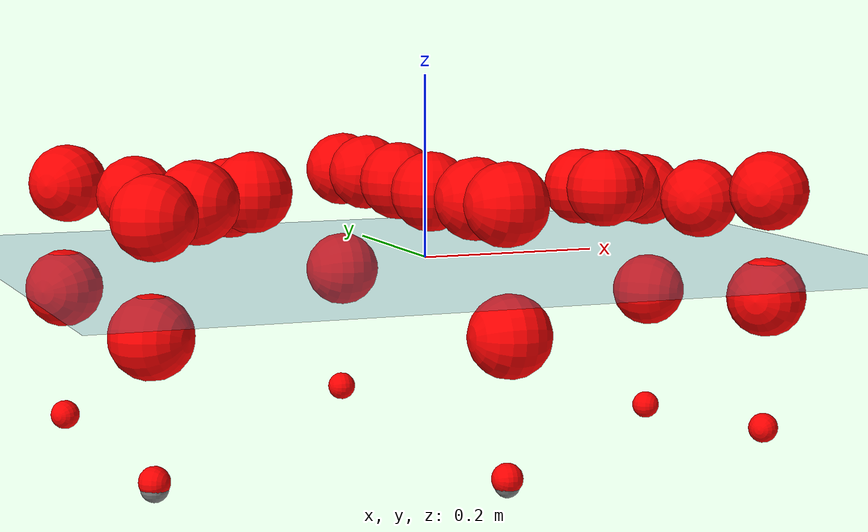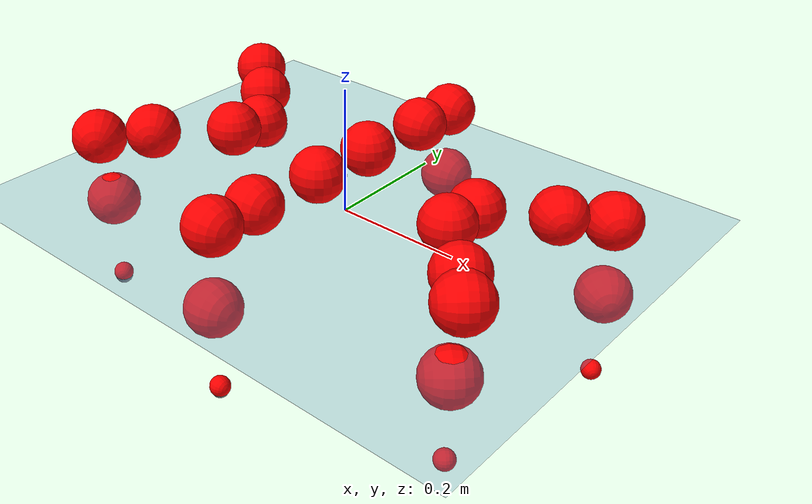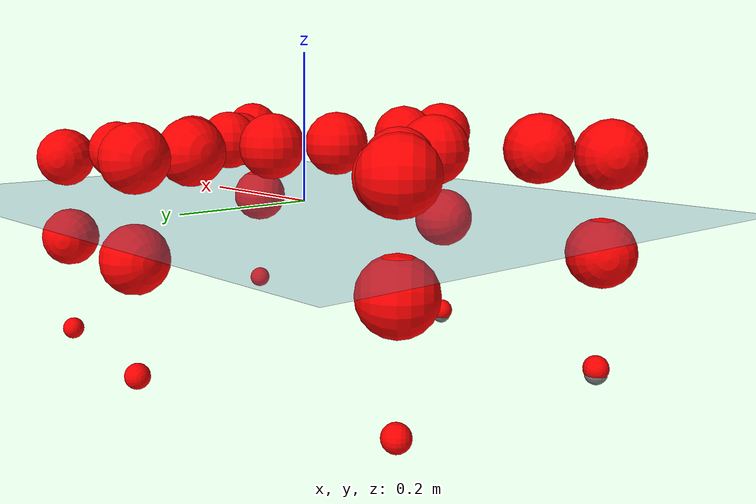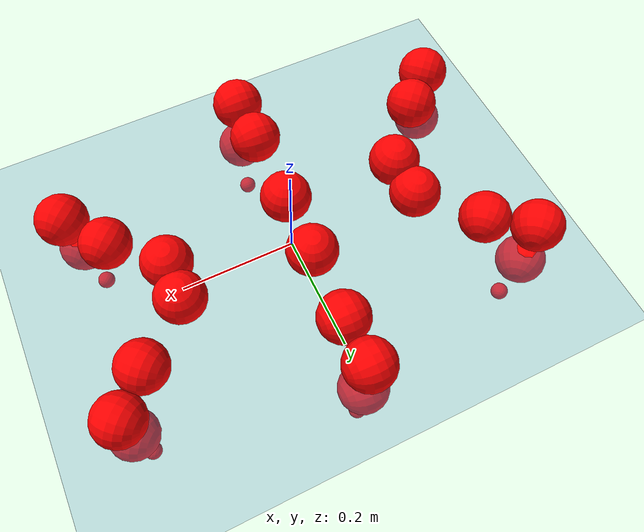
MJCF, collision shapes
<mujoco model="Golem">
  <compiler angle="radian" assetdir="assets" balanceinertia="true" inertiafromgeom="false"/>

  <option timestep="0.005" density="1.2" viscosity="2e-05"/>

  <size nkey="1"/>

  <visual>
    <quality shadowsize="8192"/>
    <map shadowclip="0.5"/>
  </visual>

  <default>
    <default class="/">
      <joint armature="0.01" damping="0.01" frictionloss="0.01"/>
      <geom contype="0" conaffinity="0" group="1" solref="-1000 -80"/>
      <site size="0.01 0.005 0.005" group="5"/>
      <general forcelimited="true" biastype="affine" gainprm="25" biasprm="0 -25 -0.5"/>
      <default class="visual">
        <geom type="mesh" group="2"/>
      </default>
      <default class="collision">
        <geom group="3"/>
      </default>
      <default class="foot">
        <geom size="0.01 0 0" condim="6" group="4" priority="1" solimp="0.015 1 0.01"/>
      </default>
      <default class="reward_collision_sphere">
        <geom group="5" rgba="1 0 0 1"/>
      </default>
    </default>
  </default>

  <asset>
    <texture type="skybox" colorspace="auto" name="//unnamed_texture_0" builtin="gradient" rgb1="0.95 0.95 0.95" rgb2="0.95 0.95 0.95" width="100" height="600"/>
    <texture type="2d" colorspace="auto" name="texplane" builtin="checker" rgb1="0.345 0.575 0.748" rgb2="0.345 0.575 0.748" markrgb="1 1 1" width="512" height="512"/>
    <material name="MatPlane" class="/" texture="texplane" texuniform="true" texrepeat="2 2" specular="0.9"/>
    <mesh name="body" class="/" file="body.stl" scale="0.001 0.001 0.001"/>
    <mesh name="coxa" class="/" file="coxa.stl" scale="0.001 0.001 0.001"/>
    <mesh name="femur" class="/" file="femur.stl" scale="0.001 0.001 0.001"/>
    <mesh name="tibia" class="/" file="tibia.stl" scale="0.001 0.001 0.001"/>
    <mesh name="tarsus" class="/" file="tarsus.stl" scale="0.001 0.001 0.001"/>
  </asset>

  <worldbody>
    <geom name="floor" class="/" size="100 100 0.125" type="plane" group="0" material="MatPlane"/>
    <light name="toplight_shadow" class="/" pos="0 0 5" dir="0.0990148 0.0990148 -0.990148" type="directional" ambient="0.04 0.04 0.04" diffuse="0.55 0.55 0.55" specular="0.12 0.12 0.12"/>
    <light name="toplight_fill" class="/" pos="0 0 5" dir="0.0990148 0.0990148 -0.990148" type="directional" castshadow="false" ambient="0.04 0.04 0.04" diffuse="0.3 0.3 0.3" specular="0.08 0.08 0.08"/>
    <body name="trunk" pos="-8.20912e-05 0.000445019 0.00664528" quat="0.999991 0.00154751 0.00299957 -0.00268751">
      <inertial pos="-0.00374056 0.00383013 -0.00761793" quat="0.999907 0.0131329 -0.000760904 -0.00349178" mass="5.4797" diaginertia="0.0460982 0.0025301 0.0196981"/>
      <joint name="//unnamed_joint_0" type="free"/>
      <geom name="//unnamed_geom_1" class="/" pos="0 0 0.0733586" quat="1 0 0 0" type="mesh" rgba="0.9 0.9 0.9 1" mesh="body"/>
      <site name="imu" class="/" pos="0.183774 -0.0450364 0.0549917" size="0.0107692"/>
      <camera name="track" class="/" pos="0 -1.48479 0" quat="0.707107 0.707107 0 0" mode="trackcom"/>
      <camera name="ego_camera" class="/" pos="0.174479 0 0.114623" quat="-0.5 -0.5 0.5 0.5"/>
      <body name="coxa_RR" pos="-0.235964 -0.0616553 0.0742053" quat="0.386339 0.00226245 -0.0041323 -0.922345">
        <inertial pos="-0.00784097 -0.00247666 0.00558506" quat="0.99979 -0.00791988 -0.0129645 0.0137331" mass="0.225427" diaginertia="0.0458457 0.00201784 0.017027"/>
        <joint name="coxa_joint_RR" class="/" pos="0 0 0" axis="0.00527471 0.018903 -0.999807" range="-3.21879 3.1875" armature="0.0110439" damping="0.0153521" frictionloss="0.00897199"/>
        <geom name="//unnamed_geom_2" class="/" type="mesh" rgba="0.2 0.2 0.2 1" mesh="coxa"/>
        <geom name="//unnamed_geom_3" class="reward_collision_sphere" size="0.043077" pos="-0.0402645 0 0"/>
        <body name="femur_RR" pos="0.0860255 0.00446983 0.00175505" quat="0.498846 -0.500073 0.496825 0.504228">
          <inertial pos="-0.000502219 -0.0116696 -0.00524603" quat="0.999481 0.0234633 0.0183925 -0.0121644" mass="0.283559" diaginertia="0.0451934 0.00267062 0.0221333"/>
          <joint name="femur_joint_RR" class="/" pos="0 0 0" axis="-0.00154323 -0.00104986 -0.999998" stiffness="0.0020302" range="-3.19359 3.19405" armature="0.00620831" damping="0" frictionloss="0.0105543"/>
          <geom name="//unnamed_geom_4" class="/" type="mesh" rgba="0.9 0.9 0.9 1" mesh="femur"/>
          <geom name="//unnamed_geom_5" class="reward_collision_sphere" size="0.043077"/>
          <body name="tibia_RR" pos="0.00630887 -0.0844232 -0.000892998" quat="-0.000473092 1 -0.000174707 3.20345e-05">
            <inertial pos="-0.00202721 -0.0107013 -0.000799134" quat="0.999998 0.00164213 0.0008227 -0.000596207" mass="0.268294" diaginertia="0.0468913 0.0024182 0.0214334"/>
            <joint name="tibia_joint_RR" class="/" pos="0 0 0" axis="-0.00968864 0.0504646 0.998679" stiffness="0.0364374" range="-3.35456 3.1153" armature="0.014074" damping="0.0411909" frictionloss="0.00400375"/>
            <geom name="//unnamed_geom_6" class="/" type="mesh" rgba="0.2 0.2 0.2 1" mesh="tibia"/>
            <geom name="//unnamed_geom_7" class="reward_collision_sphere" size="0.043077"/>
            <body name="tarsus_RR" pos="0.118491 -0.00797508 0.0106868" quat="0.999996 0.00237876 -0.00117734 1.26174e-05">
              <inertial pos="0.0762676 0.000964147 -0.00733982" quat="0.516566 0.490666 0.486234 0.505948" mass="0.278734" diaginertia="0.0485848 0.00259936 0.018747"/>
              <joint name="tarsus_joint_RR" class="/" pos="0 0 0" axis="0.0316834 -0.00958609 0.999452" range="-3.02884 3.12541" armature="0.0124828" damping="0" frictionloss="0.010828"/>
              <geom name="//unnamed_geom_8" class="/" type="mesh" rgba="0.9 0.9 0.9 1" mesh="tarsus"/>
              <geom name="foot_1" class="foot" size="0.0144004" pos="0.150321 0 0" quat="0 -0.707107 0 0.707107"/>
              <geom name="//unnamed_geom_10" class="reward_collision_sphere" size="0.043077"/>
              <geom name="//unnamed_geom_11" class="reward_collision_sphere" size="0.0161539" pos="0.144281 0 0"/>
              <site name="foot_1" class="foot" pos="0.150321 0 0" quat="0 -0.707107 0 0.707107" size="0.0107692"/>
            </body>
          </body>
        </body>
      </body>
      <body name="coxa_RM" pos="-0.0121489 -0.0880468 0.0705938" quat="0.707273 -0.000397683 0.000775197 -0.70694">
        <inertial pos="0.000941446 0.000917464 0.00915355" quat="0.998237 0.0420299 0.0414358 -0.00625845" mass="0.225234" diaginertia="0.037538 0.00165487 0.0151116"/>
        <joint name="coxa_joint_RM" class="/" pos="0 0 0" axis="0.0190288 -0.0528986 -0.998419" stiffness="0.0227368" range="-3.13163 3.24356" armature="0.0118664" damping="0.00849389" frictionloss="0.00711752"/>
        <geom name="//unnamed_geom_12" class="/" type="mesh" rgba="0.2 0.2 0.2 1" mesh="coxa"/>
        <geom name="//unnamed_geom_13" class="reward_collision_sphere" size="0.043077" pos="-0.0402645 0 0"/>
        <body name="femur_RM" pos="0.0887435 -0.000902072 0.00543475" quat="0.500402 -0.499631 0.500221 0.499745">
          <inertial pos="0.00101408 -0.00765926 0.00174744" quat="0.999998 0.00131983 -0.000949821 -0.00121267" mass="0.236635" diaginertia="0.0493605 0.00224621 0.0213013"/>
          <joint name="femur_joint_RM" class="/" pos="0 0 0" axis="0.00536245 -3.53439e-05 -0.999986" stiffness="0.04008" range="-3.31325 3.04062" armature="0.00685668" damping="0.0149005" frictionloss="0.00544444"/>
          <geom name="//unnamed_geom_14" class="/" type="mesh" rgba="0.9 0.9 0.9 1" mesh="femur"/>
          <geom name="//unnamed_geom_15" class="reward_collision_sphere" size="0.043077"/>
          <body name="tibia_RM" pos="-0.00237422 -0.0785907 0.000178621" quat="-0.000352325 1 3.19705e-05 1.29715e-05">
            <inertial pos="0.00112836 -0.000106465 -0.00813286" quat="0.999989 -0.00401335 -0.00121279 0.00186034" mass="0.21611" diaginertia="0.0426324 0.00220811 0.0209623"/>
            <joint name="tibia_joint_RM" class="/" pos="0 0 0" axis="0.0438807 0.0292095 0.99861" range="-3.21701 2.99664" armature="0.0166423" damping="0.0138979" frictionloss="0.00506318"/>
            <geom name="//unnamed_geom_16" class="/" type="mesh" rgba="0.2 0.2 0.2 1" mesh="tibia"/>
            <geom name="//unnamed_geom_17" class="reward_collision_sphere" size="0.043077"/>
            <body name="tarsus_RM" pos="0.130608 0.00951883 -0.00132078" quat="0.999993 -0.0011988 -0.000704644 -0.00344783">
              <inertial pos="0.0827573 0.000408619 0.00152912" quat="0.494264 0.498173 0.503686 0.503813" mass="0.195156" diaginertia="0.0372977 0.00195708 0.0169726"/>
              <joint name="tarsus_joint_RM" class="/" pos="0 0 0" axis="-0.0131223 0.0127372 0.999833" stiffness="0.0013764" range="-3.20534 3.16035" armature="0.0131698" damping="0" frictionloss="0.0100062"/>
              <geom name="//unnamed_geom_18" class="/" type="mesh" rgba="0.9 0.9 0.9 1" mesh="tarsus"/>
              <geom name="foot_2" class="foot" size="0.0132608" pos="0.150321 0 0" quat="0 -0.707107 0 0.707107"/>
              <geom name="//unnamed_geom_20" class="reward_collision_sphere" size="0.043077"/>
              <geom name="//unnamed_geom_21" class="reward_collision_sphere" size="0.0161539" pos="0.144281 0 0"/>
              <site name="foot_2" class="foot" pos="0.150321 0 0" quat="0 -0.707107 0 0.707107" size="0.0107692"/>
            </body>
          </body>
        </body>
      </body>
      <body name="coxa_RF" pos="0.235223 -0.0504639 0.0649948" quat="0.924012 -0.000124169 0.00062577 -0.382363">
        <inertial pos="0.010941 0.000963985 0.0080663" quat="0.999495 -0.000332665 -0.0299179 0.0107249" mass="0.240052" diaginertia="0.0359087 0.00189572 0.0166473"/>
        <joint name="coxa_joint_RF" class="/" pos="0 0 0" axis="0.00520566 -0.00177446 -0.999985" stiffness="0.0414741" range="-3.11949 3.2681" armature="0.0110302" damping="0" frictionloss="0.00535449"/>
        <geom name="//unnamed_geom_22" class="/" type="mesh" rgba="0.2 0.2 0.2 1" mesh="coxa"/>
        <geom name="//unnamed_geom_23" class="reward_collision_sphere" size="0.043077" pos="-0.0402645 0 0"/>
        <body name="femur_RF" pos="0.0693185 0.00118027 -0.00592656" quat="0.503602 -0.498345 0.499773 0.498261">
          <inertial pos="-0.000184245 0.00139602 0.00156991" quat="0.999633 -0.0137449 -0.0152031 0.0177198" mass="0.243348" diaginertia="0.047967 0.0024275 0.0213036"/>
          <joint name="femur_joint_RF" class="/" pos="0 0 0" axis="0.0145367 0.00272039 -0.999891" range="-3.22846 3.16072" armature="0.0105727" damping="0.0165552" frictionloss="0.0108928"/>
          <geom name="//unnamed_geom_24" class="/" type="mesh" rgba="0.9 0.9 0.9 1" mesh="femur"/>
          <geom name="//unnamed_geom_25" class="reward_collision_sphere" size="0.043077"/>
          <body name="tibia_RF" pos="-0.0127002 -0.0806292 -0.00894889" quat="0.000740051 0.999999 0.000293818 0.00152526">
            <inertial pos="-0.00240332 0.0103596 0.00852308" quat="0.998776 -0.0478773 0.012267 0.00216582" mass="0.273575" diaginertia="0.052308 0.00264088 0.0195675"/>
            <joint name="tibia_joint_RF" class="/" pos="0 0 0" axis="0.00266708 0.0490935 0.998791" stiffness="0.061219" range="-3.04215 3.15763" armature="0.0115517" damping="0.0375244" frictionloss="0.0140106"/>
            <geom name="//unnamed_geom_26" class="/" type="mesh" rgba="0.2 0.2 0.2 1" mesh="tibia"/>
            <geom name="//unnamed_geom_27" class="reward_collision_sphere" size="0.043077"/>
            <body name="tarsus_RF" pos="0.11402 0.00258845 0.0113619" quat="1 3.94971e-05 -4.03293e-08 -2.781e-05">
              <inertial pos="0.0791284 -0.000518984 -0.000634179" quat="0.498703 0.499906 0.489431 0.51171" mass="0.267861" diaginertia="0.048618 0.00265171 0.0208537"/>
              <joint name="tarsus_joint_RF" class="/" pos="0 0 0" axis="0.0537447 -0.0265234 0.998202" range="-3.13644 3.1622" armature="0.012512" damping="0.0118989" frictionloss="0.00771772"/>
              <geom name="//unnamed_geom_28" class="/" type="mesh" rgba="0.9 0.9 0.9 1" mesh="tarsus"/>
              <geom name="foot_3" class="foot" size="0.00888363" pos="0.150321 0 0" quat="0 -0.707107 0 0.707107"/>
              <geom name="//unnamed_geom_30" class="reward_collision_sphere" size="0.043077"/>
              <geom name="//unnamed_geom_31" class="reward_collision_sphere" size="0.0161539" pos="0.144281 0 0"/>
              <site name="foot_3" class="foot" pos="0.150321 0 0" quat="0 -0.707107 0 0.707107" size="0.0107692"/>
            </body>
          </body>
        </body>
      </body>
      <body name="coxa_LR" pos="-0.241543 0.0599281 0.0623911" quat="0.386098 0.00203864 -0.00208798 0.922453">
        <inertial pos="0.00488269 -0.00867671 0.00936396" quat="0.999988 0.00319031 0.00181855 -0.00335627" mass="0.243835" diaginertia="0.0445167 0.0024271 0.0196086"/>
        <joint name="coxa_joint_LR" class="/" pos="0 0 0" axis="-0.0383209 -0.0113711 -0.999201" range="-3.05131 2.93533" armature="0.00993854" damping="0.0116866" frictionloss="0.0067263"/>
        <geom name="//unnamed_geom_32" class="/" type="mesh" rgba="0.2 0.2 0.2 1" mesh="coxa"/>
        <geom name="//unnamed_geom_33" class="reward_collision_sphere" size="0.043077" pos="-0.0402645 0 0"/>
        <body name="femur_LR" pos="0.0808776 -0.00562 -0.00404653" quat="0.500782 -0.499089 0.499077 0.501049">
          <inertial pos="0.000488929 -0.00740531 -0.00269961" quat="0.998481 0.0380274 0.0233106 0.0323334" mass="0.268865" diaginertia="0.0399747 0.00237131 0.021855"/>
          <joint name="femur_joint_LR" class="/" pos="0 0 0" axis="0.0482349 -0.0437826 0.997876" range="-3.04512 3.0687" armature="0.00459378" damping="0" frictionloss="0.0116237"/>
          <geom name="//unnamed_geom_34" class="/" type="mesh" rgba="0.9 0.9 0.9 1" mesh="femur"/>
          <geom name="//unnamed_geom_35" class="reward_collision_sphere" size="0.043077"/>
          <body name="tibia_LR" pos="-0.00901304 -0.0825618 0.00777964" quat="0.000742715 0.999999 -0.00120354 0.000570019">
            <inertial pos="0.00510264 -0.00303641 -0.00839424" quat="0.999351 0.0261117 0.00501688 -0.0243052" mass="0.214932" diaginertia="0.0423036 0.00209299 0.020387"/>
            <joint name="tibia_joint_LR" class="/" pos="0 0 0" axis="0.00563996 -0.00117068 -0.999983" stiffness="0.000429861" range="-3.36056 2.98713" armature="0.0157304" damping="0.0104515" frictionloss="0.0106678"/>
            <geom name="//unnamed_geom_36" class="/" type="mesh" rgba="0.2 0.2 0.2 1" mesh="tibia"/>
            <geom name="//unnamed_geom_37" class="reward_collision_sphere" size="0.043077"/>
            <body name="tarsus_LR" pos="0.117698 0.00545948 0.000302844" quat="1 -2.60188e-05 -7.19609e-05 1.79287e-05">
              <inertial pos="0.0796308 0.00961634 -0.000790159" quat="0.499249 0.500057 0.500553 0.50014" mass="0.292268" diaginertia="0.0452843 0.00197172 0.0191289"/>
              <joint name="tarsus_joint_LR" class="/" pos="0 0 0" axis="-0.00462965 -0.00109251 -0.999989" range="-3.11823 3.01532" armature="0.0108657" damping="0.0246664" frictionloss="0.0140008"/>
              <geom name="//unnamed_geom_38" class="/" type="mesh" rgba="0.9 0.9 0.9 1" mesh="tarsus"/>
              <geom name="foot_4" class="foot" size="0.00834789" pos="0.150321 0 0" quat="0.707107 0 -0.707107 0"/>
              <geom name="//unnamed_geom_40" class="reward_collision_sphere" size="0.043077"/>
              <geom name="//unnamed_geom_41" class="reward_collision_sphere" size="0.0161539" pos="0.144281 0 0"/>
              <site name="foot_4" class="foot" pos="0.150321 0 0" quat="0.707107 0 -0.707107 0" size="0.0107692"/>
            </body>
          </body>
        </body>
      </body>
      <body name="coxa_LM" pos="-0.00865349 0.101088 0.07183" quat="0.707055 -0.000876678 -0.000108057 0.707158">
        <inertial pos="0.000404757 0.000964027 0.0108004" quat="0.999993 -0.00164822 0.0031734 -0.000775629" mass="0.254561" diaginertia="0.0400227 0.00215212 0.0189991"/>
        <joint name="coxa_joint_LM" class="/" pos="0 0 0" axis="0.0263198 0.00591059 -0.999636" range="-3.12753 3.1043" armature="0.00907836" damping="0.0449086" frictionloss="0.01081"/>
        <geom name="//unnamed_geom_42" class="/" type="mesh" rgba="0.2 0.2 0.2 1" mesh="coxa"/>
        <geom name="//unnamed_geom_43" class="reward_collision_sphere" size="0.043077" pos="-0.0402645 0 0"/>
        <body name="femur_LM" pos="0.0815549 -0.00549755 -0.00146343" quat="0.499758 -0.500616 0.499948 0.499677">
          <inertial pos="0.00765807 0.000341301 0.0122481" quat="0.999227 0.029837 -0.0254282 -0.00298008" mass="0.261875" diaginertia="0.0461906 0.00238472 0.0212779"/>
          <joint name="femur_joint_LM" class="/" pos="0 0 0" axis="0.0229349 -0.0148731 0.999626" range="-3.17406 3.37597" armature="0.0137867" damping="0.0278147" frictionloss="0.0156403"/>
          <geom name="//unnamed_geom_44" class="/" type="mesh" rgba="0.9 0.9 0.9 1" mesh="femur"/>
          <geom name="//unnamed_geom_45" class="reward_collision_sphere" size="0.043077"/>
          <body name="tibia_LM" pos="0.00330945 -0.0807497 0.00143085" quat="0.00161937 0.999997 -0.00152122 0.00109032">
            <inertial pos="-0.00429612 0.00178664 -0.00105697" quat="0.999997 -0.000217279 -0.00240853 0.000964185" mass="0.268916" diaginertia="0.0503917 0.00256448 0.0225277"/>
            <joint name="tibia_joint_LM" class="/" pos="0 0 0" axis="0.00693437 0.0445819 -0.998982" range="-3.31424 3.24294" armature="0.0040744" damping="0.0478963" frictionloss="0.00612684"/>
            <geom name="//unnamed_geom_46" class="/" type="mesh" rgba="0.2 0.2 0.2 1" mesh="tibia"/>
            <geom name="//unnamed_geom_47" class="reward_collision_sphere" size="0.043077"/>
            <body name="tarsus_LM" pos="0.121279 0.00175322 0.000682404" quat="1 -0.000370812 0.000361817 0.000661236">
              <inertial pos="0.0849057 0.00673867 0.00199142" quat="0.52153 0.496083 0.488824 0.492909" mass="0.283181" diaginertia="0.0515857 0.00302751 0.0237984"/>
              <joint name="tarsus_joint_LM" class="/" pos="0 0 0" axis="-0.00790138 -0.0286791 -0.999557" range="-3.14226 3.12841" armature="0.0116325" damping="0" frictionloss="0.00447562"/>
              <geom name="//unnamed_geom_48" class="/" type="mesh" rgba="0.9 0.9 0.9 1" mesh="tarsus"/>
              <geom name="foot_5" class="foot" size="0.00847061" pos="0.150321 0 0" quat="0.707107 0 -0.707107 0"/>
              <geom name="//unnamed_geom_50" class="reward_collision_sphere" size="0.043077"/>
              <geom name="//unnamed_geom_51" class="reward_collision_sphere" size="0.0161539" pos="0.144281 0 0"/>
              <site name="foot_5" class="foot" pos="0.150321 0 0" quat="0.707107 0 -0.707107 0" size="0.0107692"/>
            </body>
          </body>
        </body>
      </body>
      <body name="coxa_LF" pos="0.23675 0.0708859 0.0610505" quat="0.923939 -0.00149142 -0.000410922 0.382537">
        <inertial pos="0.0106535 0.0123617 0.0072587" quat="0.99993 -0.00406972 -0.0107709 0.00260153" mass="0.270602" diaginertia="0.0482174 0.00287208 0.0196521"/>
        <joint name="coxa_joint_LF" class="/" pos="0 0 0" axis="0.0513991 0.0134439 -0.998588" stiffness="0.00255134" range="-3.02613 3.13719" armature="0.00948682" damping="0" frictionloss="0.0150615"/>
        <geom name="//unnamed_geom_52" class="/" type="mesh" rgba="0.2 0.2 0.2 1" mesh="coxa"/>
        <geom name="//unnamed_geom_53" class="reward_collision_sphere" size="0.043077" pos="-0.0402645 0 0"/>
        <body name="femur_LF" pos="0.0774134 -0.0100287 -0.00956727" quat="0.501652 -0.49713 0.499264 0.501939">
          <inertial pos="0.000994081 0.00592621 -0.00263249" quat="1 -0.000245435 -0.000165081 -0.000164879" mass="0.270853" diaginertia="0.0556195 0.00252459 0.022078"/>
          <joint name="femur_joint_LF" class="/" pos="0 0 0" axis="0.0275099 -0.0436026 0.99867" stiffness="0.000154412" range="-3.04619 2.97425" armature="0.0102776" damping="0.0108907" frictionloss="0.00990798"/>
          <geom name="//unnamed_geom_54" class="/" type="mesh" rgba="0.9 0.9 0.9 1" mesh="femur"/>
          <geom name="//unnamed_geom_55" class="reward_collision_sphere" size="0.043077"/>
          <body name="tibia_LF" pos="0.0112883 -0.0805997 -0.000140145" quat="0.000616205 0.999997 -0.00253283 -0.000375907">
            <inertial pos="-0.0062154 -0.0100419 0.00522793" quat="0.999989 0.00167212 -0.000811506 0.00434403" mass="0.234642" diaginertia="0.048396 0.00226038 0.0217139"/>
            <joint name="tibia_joint_LF" class="/" pos="0 0 0" axis="-0.0309674 -0.0121376 -0.999447" stiffness="0.0533291" range="-3.1201 3.30541" armature="0.0123692" damping="0.0364251" frictionloss="0.00964126"/>
            <geom name="//unnamed_geom_56" class="/" type="mesh" rgba="0.2 0.2 0.2 1" mesh="tibia"/>
            <geom name="//unnamed_geom_57" class="reward_collision_sphere" size="0.043077"/>
            <body name="tarsus_LF" pos="0.122878 -0.00128678 0.00801369" quat="1 0.000166457 0.000188395 -0.000348329">
              <inertial pos="0.0930864 -0.00128215 0.0020596" quat="0.504918 0.513367 0.531269 0.446392" mass="0.258779" diaginertia="0.0435418 0.00220361 0.0194487"/>
              <joint name="tarsus_joint_LF" class="/" pos="0 0 0" axis="-0.0648902 0.00427682 -0.997883" range="-3.236 3.28784" armature="0.0116398" damping="0.0452343" frictionloss="0.0132037"/>
              <geom name="//unnamed_geom_58" class="/" type="mesh" rgba="0.9 0.9 0.9 1" mesh="tarsus"/>
              <geom name="foot_6" class="foot" size="0.0100533" pos="0.150321 0 0" quat="0.707107 0 -0.707107 0"/>
              <geom name="//unnamed_geom_60" class="reward_collision_sphere" size="0.043077"/>
              <geom name="//unnamed_geom_61" class="reward_collision_sphere" size="0.0161539" pos="0.144281 0 0"/>
              <site name="foot_6" class="foot" pos="0.150321 0 0" quat="0.707107 0 -0.707107 0" size="0.0107692"/>
            </body>
          </body>
        </body>
      </body>
    </body>
  </worldbody>

  <contact>
    <pair class="/" geom1="floor" geom2="foot_1" name="//unnamed_contact_0"/>
    <pair class="/" geom1="floor" geom2="foot_2" name="//unnamed_contact_1"/>
    <pair class="/" geom1="floor" geom2="foot_3" name="//unnamed_contact_2"/>
    <pair class="/" geom1="floor" geom2="foot_4" name="//unnamed_contact_3"/>
    <pair class="/" geom1="floor" geom2="foot_5" name="//unnamed_contact_4"/>
    <pair class="/" geom1="floor" geom2="foot_6" name="//unnamed_contact_5"/>
  </contact>

  <actuator>
    <general name="coxa_joint_RR" class="/" joint="coxa_joint_RR" forcerange="-7.76572 7.76572" gainprm="24.0416" biasprm="0 -24.0416 -0.48752"/>
    <general name="femur_joint_RR" class="/" joint="femur_joint_RR" forcerange="-7.2674 7.2674" gainprm="24.0416" biasprm="0 -24.0416 -0.48752"/>
    <general name="tibia_joint_RR" class="/" joint="tibia_joint_RR" forcerange="-7.47474 7.47474" gainprm="24.0416" biasprm="0 -24.0416 -0.48752"/>
    <general name="tarsus_joint_RR" class="/" joint="tarsus_joint_RR" forcerange="-5.3194 5.3194" gainprm="24.0416" biasprm="0 -24.0416 -0.48752"/>
    <general name="coxa_joint_RM" class="/" joint="coxa_joint_RM" forcerange="-8.92554 8.92554" gainprm="24.0416" biasprm="0 -24.0416 -0.48752"/>
    <general name="femur_joint_RM" class="/" joint="femur_joint_RM" forcerange="-5.28876 5.28876" gainprm="24.0416" biasprm="0 -24.0416 -0.48752"/>
    <general name="tibia_joint_RM" class="/" joint="tibia_joint_RM" forcerange="-7.1727 7.1727" gainprm="24.0416" biasprm="0 -24.0416 -0.48752"/>
    <general name="tarsus_joint_RM" class="/" joint="tarsus_joint_RM" forcerange="-6.67686 6.67686" gainprm="24.0416" biasprm="0 -24.0416 -0.48752"/>
    <general name="coxa_joint_RF" class="/" joint="coxa_joint_RF" forcerange="-10.3944 10.3944" gainprm="24.0416" biasprm="0 -24.0416 -0.48752"/>
    <general name="femur_joint_RF" class="/" joint="femur_joint_RF" forcerange="-7.84749 7.84749" gainprm="24.0416" biasprm="0 -24.0416 -0.48752"/>
    <general name="tibia_joint_RF" class="/" joint="tibia_joint_RF" forcerange="-6.95552 6.95552" gainprm="24.0416" biasprm="0 -24.0416 -0.48752"/>
    <general name="tarsus_joint_RF" class="/" joint="tarsus_joint_RF" forcerange="-7.74455 7.74455" gainprm="24.0416" biasprm="0 -24.0416 -0.48752"/>
    <general name="coxa_joint_LR" class="/" joint="coxa_joint_LR" forcerange="-8.31546 8.31546" gainprm="24.0416" biasprm="0 -24.0416 -0.48752"/>
    <general name="femur_joint_LR" class="/" joint="femur_joint_LR" forcerange="-7.88168 7.88168" gainprm="24.0416" biasprm="0 -24.0416 -0.48752"/>
    <general name="tibia_joint_LR" class="/" joint="tibia_joint_LR" forcerange="-7.69098 7.69098" gainprm="24.0416" biasprm="0 -24.0416 -0.48752"/>
    <general name="tarsus_joint_LR" class="/" joint="tarsus_joint_LR" forcerange="-8.24058 8.24058" gainprm="24.0416" biasprm="0 -24.0416 -0.48752"/>
    <general name="coxa_joint_LM" class="/" joint="coxa_joint_LM" forcerange="-8.21465 8.21465" gainprm="24.0416" biasprm="0 -24.0416 -0.48752"/>
    <general name="femur_joint_LM" class="/" joint="femur_joint_LM" forcerange="-8.09787 8.09787" gainprm="24.0416" biasprm="0 -24.0416 -0.48752"/>
    <general name="tibia_joint_LM" class="/" joint="tibia_joint_LM" forcerange="-7.7284 7.7284" gainprm="24.0416" biasprm="0 -24.0416 -0.48752"/>
    <general name="tarsus_joint_LM" class="/" joint="tarsus_joint_LM" forcerange="-6.74458 6.74458" gainprm="24.0416" biasprm="0 -24.0416 -0.48752"/>
    <general name="coxa_joint_LF" class="/" joint="coxa_joint_LF" forcerange="-9.39984 9.39984" gainprm="24.0416" biasprm="0 -24.0416 -0.48752"/>
    <general name="femur_joint_LF" class="/" joint="femur_joint_LF" forcerange="-8.00919 8.00919" gainprm="24.0416" biasprm="0 -24.0416 -0.48752"/>
    <general name="tibia_joint_LF" class="/" joint="tibia_joint_LF" forcerange="-8.29125 8.29125" gainprm="24.0416" biasprm="0 -24.0416 -0.48752"/>
    <general name="tarsus_joint_LF" class="/" joint="tarsus_joint_LF" forcerange="-8.16329 8.16329" gainprm="24.0416" biasprm="0 -24.0416 -0.48752"/>
  </actuator>

  <sensor>
    <gyro site="imu" name="imu_angular_velocity"/>
    <velocimeter site="imu" name="imu_linear_velocity"/>
    <framelinvel objtype="site" objname="foot_1" name="foot_1_global_linear_velocity"/>
    <framelinvel objtype="site" objname="foot_2" name="foot_2_global_linear_velocity"/>
    <framelinvel objtype="site" objname="foot_3" name="foot_3_global_linear_velocity"/>
    <framelinvel objtype="site" objname="foot_4" name="foot_4_global_linear_velocity"/>
    <framelinvel objtype="site" objname="foot_5" name="foot_5_global_linear_velocity"/>
    <framelinvel objtype="site" objname="foot_6" name="foot_6_global_linear_velocity"/>
  </sensor>

  <keyframe>
    <key name="home" qpos="0 0 0.1457 1 0 0 0 0 0 0 0 0 0 0 0 0 0 0 0 0 0 0 0 0 0 0 0 0 0 0 0"/>
  </keyframe>
</mujoco>
